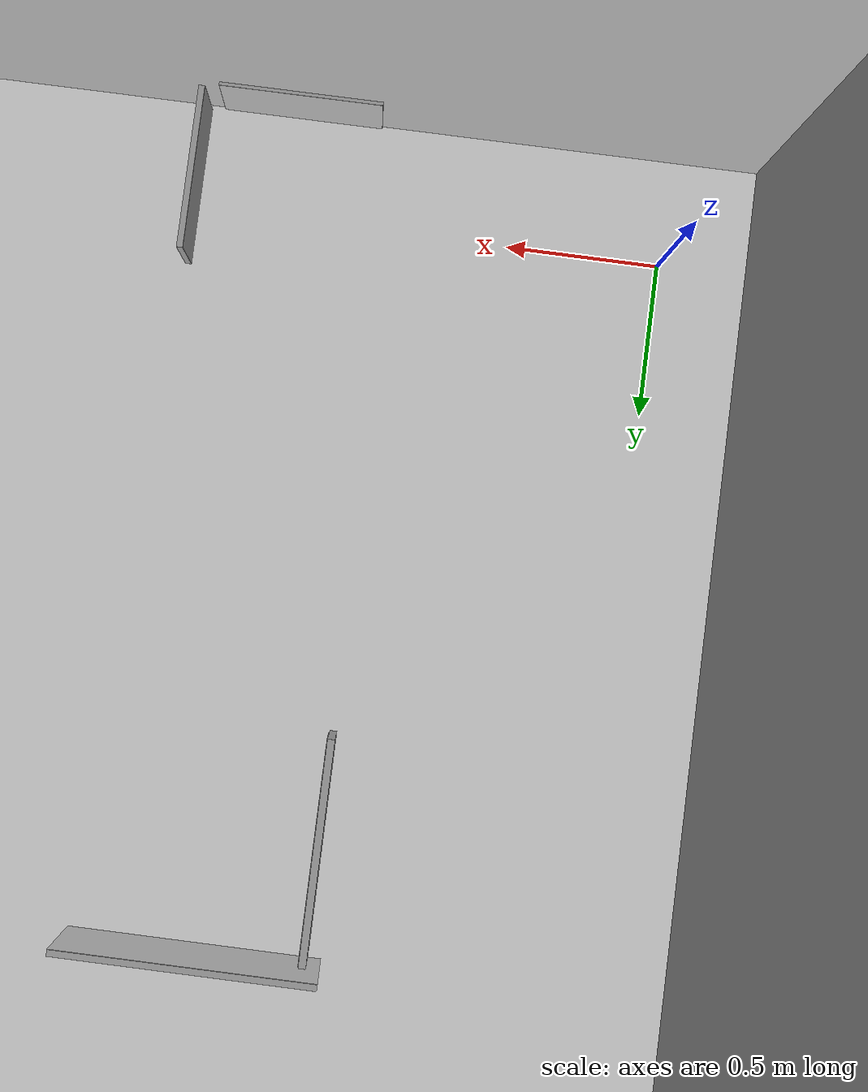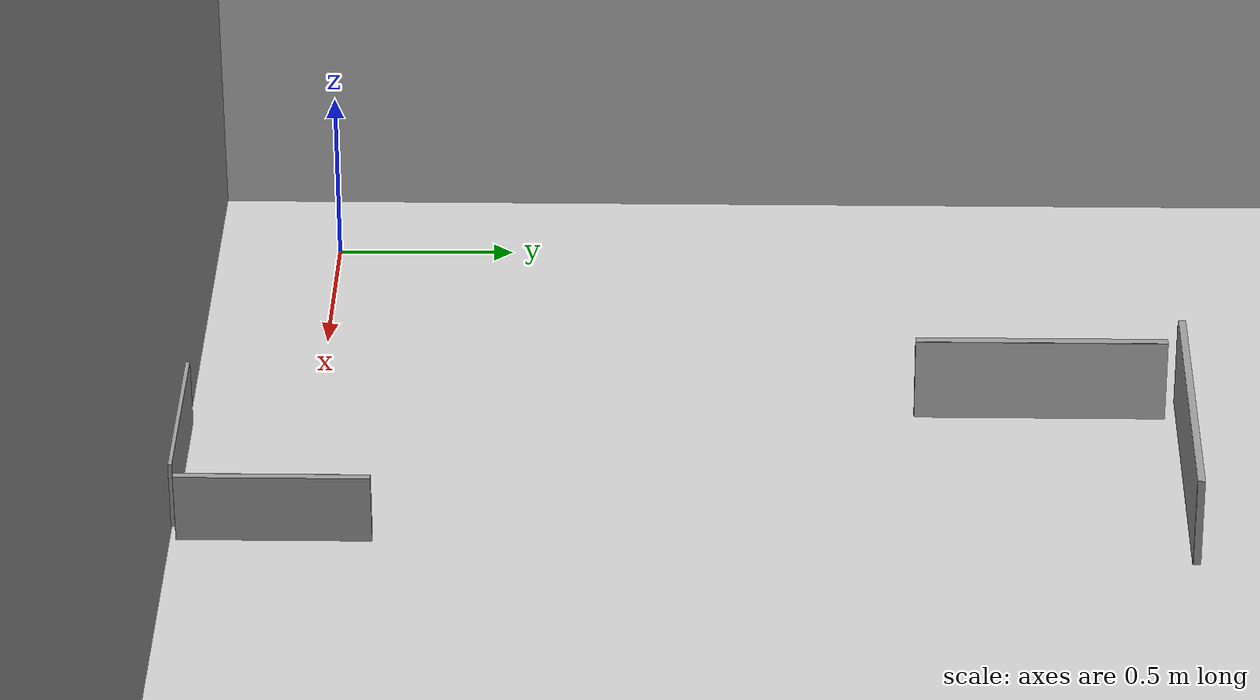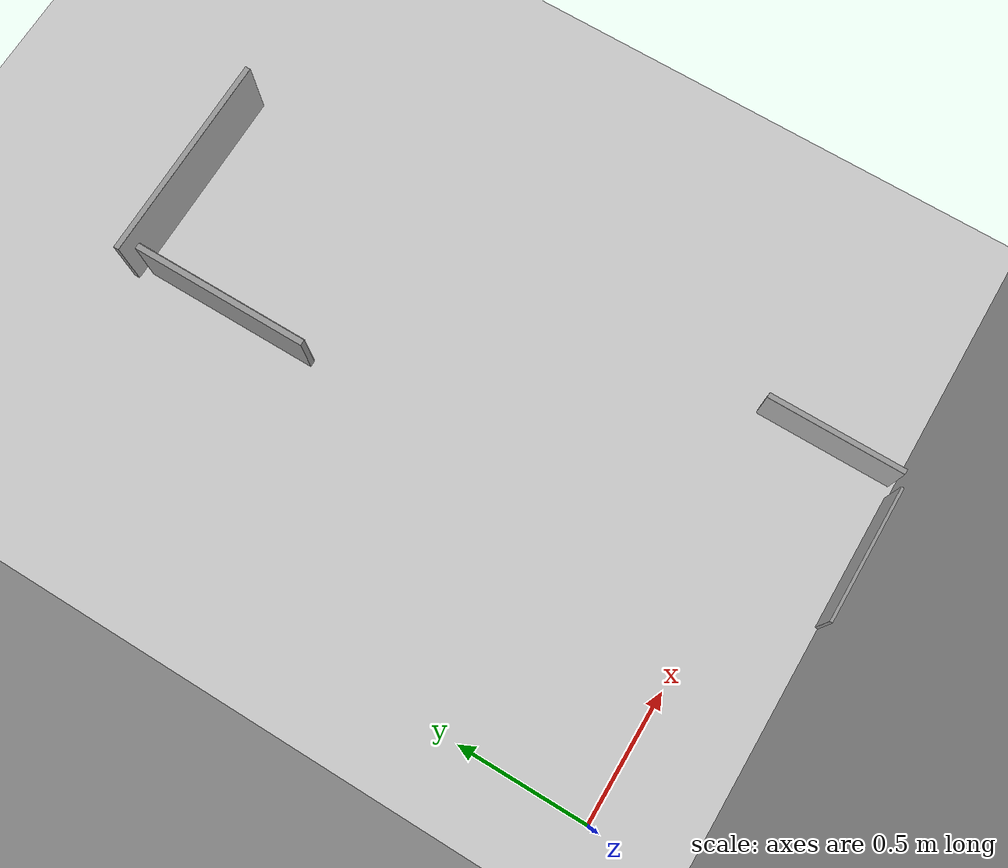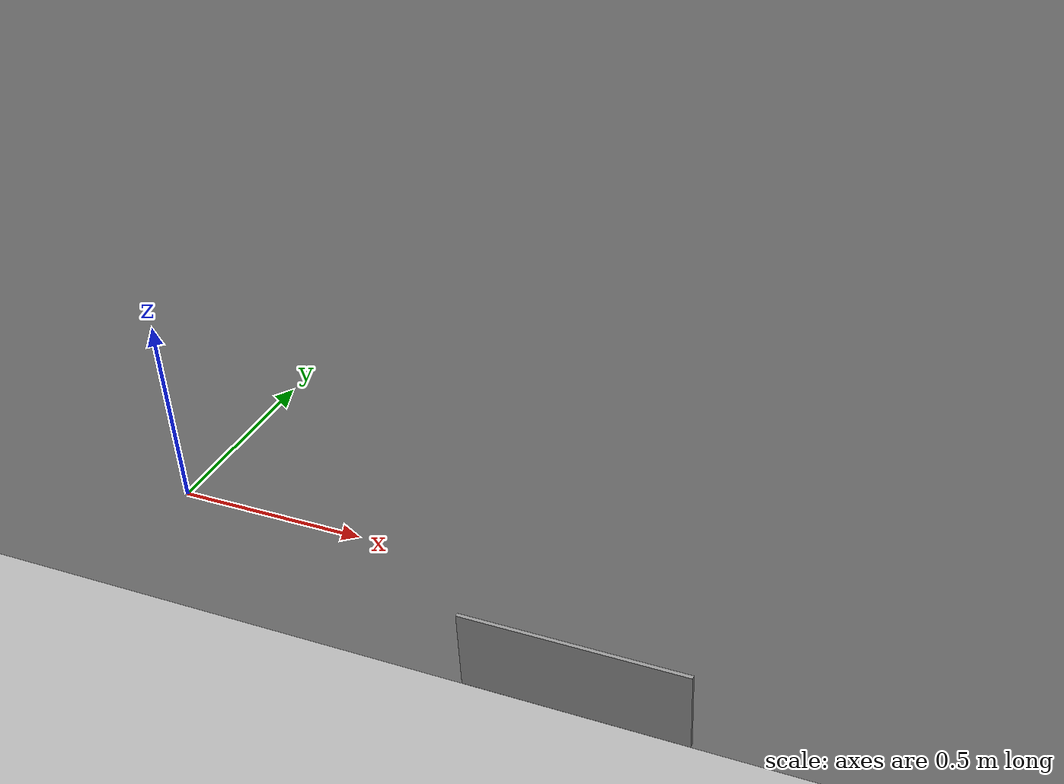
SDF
<sdf version="1.7">
 <world name="default">
  <light name="sun" type="directional">
   <pose>0 0 10 0 -0 0</pose>
   <diffuse>0.8 0.8 0.8 1</diffuse>
   <specular>0.2 0.2 0.2 1</specular>
   <attenuation>
    <range>1000</range>
    <constant>0.9</constant>
    <linear>0.01</linear>
    <quadratic>0.001</quadratic>
   </attenuation>
   <direction>-0.5 0.1 -0.9</direction>
   <spot><inner_angle>0</inner_angle><outer_angle>0</outer_angle><falloff>0</falloff></spot>
  </light>
  <model name="ground_plane">
   <static>1</static>
   <link name="link">
    <collision name="collision">
     <geometry><plane><normal>0 0 1</normal><size>100 100</size></plane></geometry>
     <surface>
      <contact><collide_bitmask>65535</collide_bitmask></contact>
      <friction><ode><mu>100</mu><mu2>50</mu2></ode></friction>
     </surface>
    </collision>
    <visual name="visual">
     <cast_shadows>0</cast_shadows>
     <geometry><plane><normal>0 0 1</normal><size>100 100</size></plane></geometry>
     <material>
      <script><uri>file://media/materials/scripts/gazebo.material</uri><name>Gazebo/Grey</name></script>
     </material>
    </visual>
   </link>
  </model>
  <gravity>0 0 -9.8</gravity>
  <magnetic_field>6e-06 2.3e-05 -4.2e-05</magnetic_field>
  <atmosphere type="adiabatic"/>
  <physics type="ode">
   <max_step_size>0.001</max_step_size>
   <real_time_factor>1</real_time_factor>
   <real_time_update_rate>1000</real_time_update_rate>
  </physics>
  <scene><ambient>0.4 0.4 0.4 1</ambient><background>0.7 0.7 0.7 1</background><shadows>1</shadows></scene>
  <audio><device>default</device></audio>
  <spherical_coordinates>
   <surface_model>EARTH_WGS84</surface_model>
   <latitude_deg>0</latitude_deg>
   <longitude_deg>0</longitude_deg>
   <elevation>0</elevation>
   <heading_deg>0</heading_deg>
  </spherical_coordinates>
  <model name="my_map">
   <static>1</static>
   <link name="link">
    <visual name="visual">
     <geometry><mesh><uri>model://middle/meshes/middle.dae</uri><scale>1 1 1</scale></mesh></geometry>
    </visual>
    <collision name="collision">
     <geometry><mesh><uri>model://middle/meshes/middle.dae</uri><scale>1 1 1</scale></mesh></geometry>
     <surface><friction><ode><mu>1</mu><mu2>1</mu2></ode></friction></surface>
    </collision>
   </link>
   <pose>-0.292822 -0.351422 0 0 -0 0</pose>
  </model>
  <model name="1">
   <static>1</static>
   <pose>1.21801 -0.350521 0.10958 0 0 -1.57106</pose>
   <link name="link_0">
    <visual name="visual">
     <geometry><box><size>0.019959 0.522549 0.197075</size></box></geometry>
     <material>
      <script><uri>file://media/materials/scripts/gazebo.material</uri><name>Gazebo/Grey</name></script>
     </material>
    </visual>
    <visual name="signboard_visual">
     <pose>-0.01 0 0 0 -0 0</pose>
     <geometry><box><size>0.001 0.522549 0.197075</size></box></geometry>
     <material>
      <script>
       <uri>model://1/materials/scripts</uri>
       <uri>model://1/materials/textures</uri>
       <name>Model_1/Texture</name>
      </script>
     </material>
    </visual>
   </link>
  </model>
  <model name="2">
   <static>1</static>
   <pose>1.5325 -0.071383 0.110338 0 -0 3.14159</pose>
   <link name="link_0">
    <visual name="visual">
     <geometry><box><size>0.019959 0.522549 0.197075</size></box></geometry>
     <material>
      <script><uri>file://media/materials/scripts/gazebo.material</uri><name>Gazebo/Grey</name></script>
     </material>
    </visual>
    <visual name="signboard_visual">
     <pose>0.01 0 0 0 -0 0</pose>
     <geometry><box><size>0.001 0.522549 0.197075</size></box></geometry>
     <material>
      <script>
       <uri>model://2/materials/scripts</uri>
       <uri>model://2/materials/textures</uri>
       <name>Model_2/Texture</name>
      </script>
     </material>
    </visual>
   </link>
  </model>
  <model name="6">
   <static>1</static>
   <pose>0.862399 1.99015 0.116555 0 -0 0</pose>
   <link name="link_4">
    <visual name="visual">
     <geometry><box><size>0.022928 0.691481 0.245119</size></box></geometry>
     <material>
      <script><uri>file://media/materials/scripts/gazebo.material</uri><name>Gazebo/Grey</name></script>
     </material>
    </visual>
    <visual name="signboard_visual">
     <pose>0.013 0 0 0 -0 0</pose>
     <geometry><box><size>0.001 0.691481 0.245119</size></box></geometry>
     <material>
      <script>
       <uri>model://6/materials/scripts</uri>
       <uri>model://6/materials/textures</uri>
       <name>Model_6/Texture</name>
      </script>
     </material>
    </visual>
   </link>
  </model>
  <model name="7">
   <static>1</static>
   <pose>1.21718 2.37582 0.142804 0 0 -3.14159</pose>
   <link name="link_5">
    <visual name="visual">
     <geometry><box><size>0.815204 0.020098 0.262382</size></box></geometry>
     <material>
      <script><uri>file://media/materials/scripts/gazebo.material</uri><name>Gazebo/Grey</name></script>
     </material>
    </visual>
    <visual name="signboard_visual">
     <pose>0 0.011 0 0 -0 0</pose>
     <geometry><box><size>0.815204 0.001 0.262382</size></box></geometry>
     <material>
      <script>
       <uri>model://7/materials/scripts</uri>
       <uri>model://7/materials/textures</uri>
       <name>Model_7/Texture</name>
      </script>
     </material>
    </visual>
   </link>
  </model>
 </world>
</sdf>
